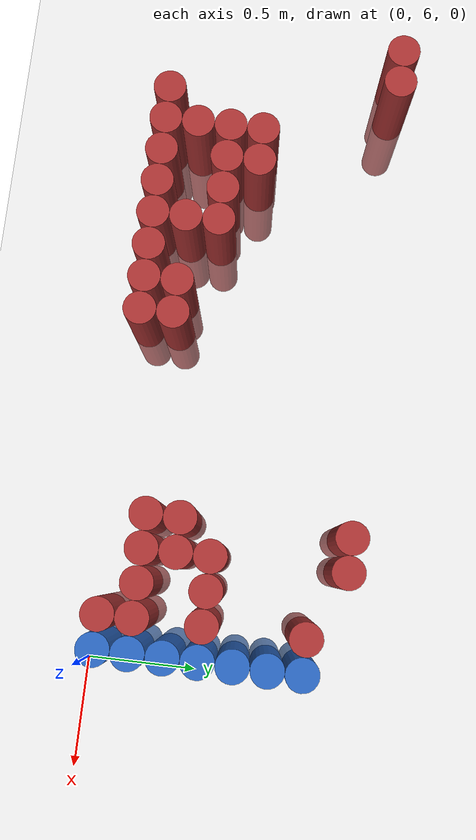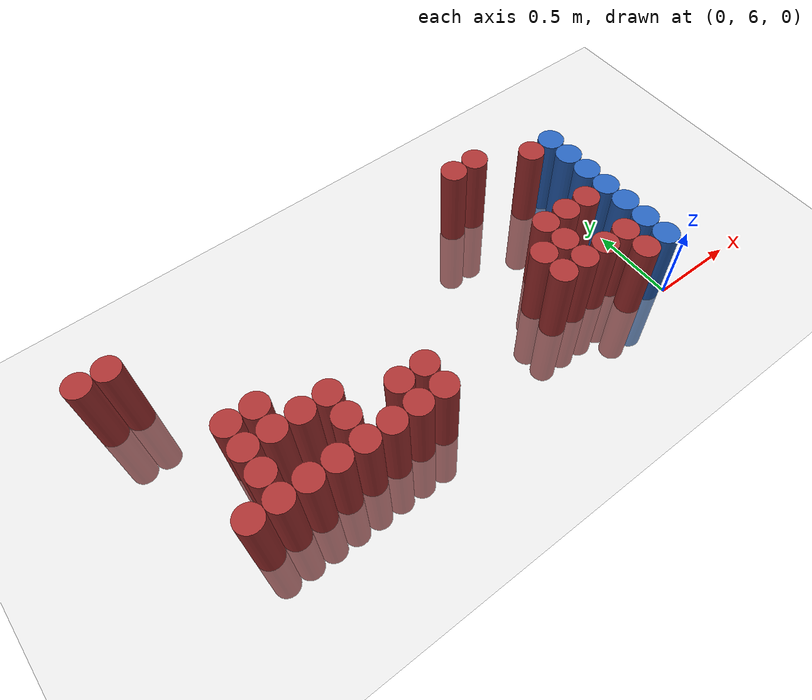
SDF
<sdf version="1.6">
 <world name="default">
  <model name="ground_plane">
   <static>1</static>
   <link name="link">
    <collision name="collision">
     <geometry><plane><normal>0 0 1</normal><size>100 100</size></plane></geometry>
     <surface><friction><ode><mu>100</mu><mu2>50</mu2></ode></friction></surface>
    </collision>
    <visual name="visual">
     <cast_shadows>0</cast_shadows>
     <geometry><plane><normal>0 0 1</normal><size>100 100</size></plane></geometry>
     <material>
      <script><uri>file://media/materials/scripts/gazebo.material</uri><name>Gazebo/Grey</name></script>
     </material>
    </visual>
   </link>
  </model>
  <model name="unit_cylinder_209">
   <static>1</static>
   <pose>-2.925000 7.125000 0.000000 0.000000 0.000000 0.000000</pose>
   <link name="link">
    <inertial>
     <mass>1</mass>
     <inertia><ixx>0.145833</ixx><ixy>0</ixy><ixz>0</ixz><iyy>0.145833</iyy><iyz>0</iyz><izz>0.125</izz></inertia>
    </inertial>
    <collision name="collision">
     <geometry><cylinder><radius>0.075000</radius><length>1</length></cylinder></geometry>
    </collision>
    <visual name="visual">
     <geometry><cylinder><radius>0.075000</radius><length>1</length></cylinder></geometry>
     <material>
      <ambient>0.648000 0.192000 0.192000 1</ambient>
      <diffuse>0.648000 0.192000 0.192000 1</diffuse>
     </material>
     <material>
      <script><name>Gazebo/Grey</name><uri>file://media/materials/scripts/gazebo.material</uri></script>
     </material>
    </visual>
    <sensor name="sensor_contact" type="contact"><contact><collision>collision</collision></contact></sensor>
   </link>
   <plugin filename="gz-sim-touchplugin-system" name="gz::sim::systems::TouchPlugin">
    <target>robot</target>
    <namespace>robot</namespace>
    <time>0.001</time>
    <enabled>true</enabled>
   </plugin>
  </model>
  <model name="unit_cylinder_216">
   <static>1</static>
   <pose>-2.775000 7.125000 0.000000 0.000000 0.000000 0.000000</pose>
   <link name="link">
    <inertial>
     <mass>1</mass>
     <inertia><ixx>0.145833</ixx><ixy>0</ixy><ixz>0</ixz><iyy>0.145833</iyy><iyz>0</iyz><izz>0.125</izz></inertia>
    </inertial>
    <collision name="collision">
     <geometry><cylinder><radius>0.075000</radius><length>1</length></cylinder></geometry>
    </collision>
    <visual name="visual">
     <geometry><cylinder><radius>0.075000</radius><length>1</length></cylinder></geometry>
     <material>
      <ambient>0.648000 0.192000 0.192000 1</ambient>
      <diffuse>0.648000 0.192000 0.192000 1</diffuse>
     </material>
     <material>
      <script><name>Gazebo/Grey</name><uri>file://media/materials/scripts/gazebo.material</uri></script>
     </material>
    </visual>
    <sensor name="sensor_contact" type="contact"><contact><collision>collision</collision></contact></sensor>
   </link>
   <plugin filename="gz-sim-touchplugin-system" name="gz::sim::systems::TouchPlugin">
    <target>robot</target>
    <namespace>robot</namespace>
    <time>0.001</time>
    <enabled>true</enabled>
   </plugin>
  </model>
  <model name="unit_cylinder_224">
   <static>1</static>
   <pose>-2.625000 6.075000 0.000000 0.000000 0.000000 0.000000</pose>
   <link name="link">
    <inertial>
     <mass>1</mass>
     <inertia><ixx>0.145833</ixx><ixy>0</ixy><ixz>0</ixz><iyy>0.145833</iyy><iyz>0</iyz><izz>0.125</izz></inertia>
    </inertial>
    <collision name="collision">
     <geometry><cylinder><radius>0.075000</radius><length>1</length></cylinder></geometry>
    </collision>
    <visual name="visual">
     <geometry><cylinder><radius>0.075000</radius><length>1</length></cylinder></geometry>
     <material>
      <ambient>0.648000 0.192000 0.192000 1</ambient>
      <diffuse>0.648000 0.192000 0.192000 1</diffuse>
     </material>
     <material>
      <script><name>Gazebo/Grey</name><uri>file://media/materials/scripts/gazebo.material</uri></script>
     </material>
    </visual>
    <sensor name="sensor_contact" type="contact"><contact><collision>collision</collision></contact></sensor>
   </link>
   <plugin filename="gz-sim-touchplugin-system" name="gz::sim::systems::TouchPlugin">
    <target>robot</target>
    <namespace>robot</namespace>
    <time>0.001</time>
    <enabled>true</enabled>
   </plugin>
  </model>
  <model name="unit_cylinder_235">
   <static>1</static>
   <pose>-2.475000 6.075000 0.000000 0.000000 0.000000 0.000000</pose>
   <link name="link">
    <inertial>
     <mass>1</mass>
     <inertia><ixx>0.145833</ixx><ixy>0</ixy><ixz>0</ixz><iyy>0.145833</iyy><iyz>0</iyz><izz>0.125</izz></inertia>
    </inertial>
    <collision name="collision">
     <geometry><cylinder><radius>0.075000</radius><length>1</length></cylinder></geometry>
    </collision>
    <visual name="visual">
     <geometry><cylinder><radius>0.075000</radius><length>1</length></cylinder></geometry>
     <material>
      <ambient>0.648000 0.192000 0.192000 1</ambient>
      <diffuse>0.648000 0.192000 0.192000 1</diffuse>
     </material>
     <material>
      <script><name>Gazebo/Grey</name><uri>file://media/materials/scripts/gazebo.material</uri></script>
     </material>
    </visual>
    <sensor name="sensor_contact" type="contact"><contact><collision>collision</collision></contact></sensor>
   </link>
   <plugin filename="gz-sim-touchplugin-system" name="gz::sim::systems::TouchPlugin">
    <target>robot</target>
    <namespace>robot</namespace>
    <time>0.001</time>
    <enabled>true</enabled>
   </plugin>
  </model>
  <model name="unit_cylinder_236">
   <static>1</static>
   <pose>-2.475000 6.225000 0.000000 0.000000 0.000000 0.000000</pose>
   <link name="link">
    <inertial>
     <mass>1</mass>
     <inertia><ixx>0.145833</ixx><ixy>0</ixy><ixz>0</ixz><iyy>0.145833</iyy><iyz>0</iyz><izz>0.125</izz></inertia>
    </inertial>
    <collision name="collision">
     <geometry><cylinder><radius>0.075000</radius><length>1</length></cylinder></geometry>
    </collision>
    <visual name="visual">
     <geometry><cylinder><radius>0.075000</radius><length>1</length></cylinder></geometry>
     <material>
      <ambient>0.648000 0.192000 0.192000 1</ambient>
      <diffuse>0.648000 0.192000 0.192000 1</diffuse>
     </material>
     <material>
      <script><name>Gazebo/Grey</name><uri>file://media/materials/scripts/gazebo.material</uri></script>
     </material>
    </visual>
    <sensor name="sensor_contact" type="contact"><contact><collision>collision</collision></contact></sensor>
   </link>
   <plugin filename="gz-sim-touchplugin-system" name="gz::sim::systems::TouchPlugin">
    <target>robot</target>
    <namespace>robot</namespace>
    <time>0.001</time>
    <enabled>true</enabled>
   </plugin>
  </model>
  <model name="unit_cylinder_237">
   <static>1</static>
   <pose>-2.475000 6.375000 0.000000 0.000000 0.000000 0.000000</pose>
   <link name="link">
    <inertial>
     <mass>1</mass>
     <inertia><ixx>0.145833</ixx><ixy>0</ixy><ixz>0</ixz><iyy>0.145833</iyy><iyz>0</iyz><izz>0.125</izz></inertia>
    </inertial>
    <collision name="collision">
     <geometry><cylinder><radius>0.075000</radius><length>1</length></cylinder></geometry>
    </collision>
    <visual name="visual">
     <geometry><cylinder><radius>0.075000</radius><length>1</length></cylinder></geometry>
     <material>
      <ambient>0.648000 0.192000 0.192000 1</ambient>
      <diffuse>0.648000 0.192000 0.192000 1</diffuse>
     </material>
     <material>
      <script><name>Gazebo/Grey</name><uri>file://media/materials/scripts/gazebo.material</uri></script>
     </material>
    </visual>
    <sensor name="sensor_contact" type="contact"><contact><collision>collision</collision></contact></sensor>
   </link>
   <plugin filename="gz-sim-touchplugin-system" name="gz::sim::systems::TouchPlugin">
    <target>robot</target>
    <namespace>robot</namespace>
    <time>0.001</time>
    <enabled>true</enabled>
   </plugin>
  </model>
  <model name="unit_cylinder_238">
   <static>1</static>
   <pose>-2.475000 6.525000 0.000000 0.000000 0.000000 0.000000</pose>
   <link name="link">
    <inertial>
     <mass>1</mass>
     <inertia><ixx>0.145833</ixx><ixy>0</ixy><ixz>0</ixz><iyy>0.145833</iyy><iyz>0</iyz><izz>0.125</izz></inertia>
    </inertial>
    <collision name="collision">
     <geometry><cylinder><radius>0.075000</radius><length>1</length></cylinder></geometry>
    </collision>
    <visual name="visual">
     <geometry><cylinder><radius>0.075000</radius><length>1</length></cylinder></geometry>
     <material>
      <ambient>0.648000 0.192000 0.192000 1</ambient>
      <diffuse>0.648000 0.192000 0.192000 1</diffuse>
     </material>
     <material>
      <script><name>Gazebo/Grey</name><uri>file://media/materials/scripts/gazebo.material</uri></script>
     </material>
    </visual>
    <sensor name="sensor_contact" type="contact"><contact><collision>collision</collision></contact></sensor>
   </link>
   <plugin filename="gz-sim-touchplugin-system" name="gz::sim::systems::TouchPlugin">
    <target>robot</target>
    <namespace>robot</namespace>
    <time>0.001</time>
    <enabled>true</enabled>
   </plugin>
  </model>
  <model name="unit_cylinder_246">
   <static>1</static>
   <pose>-2.325000 6.075000 0.000000 0.000000 0.000000 0.000000</pose>
   <link name="link">
    <inertial>
     <mass>1</mass>
     <inertia><ixx>0.145833</ixx><ixy>0</ixy><ixz>0</ixz><iyy>0.145833</iyy><iyz>0</iyz><izz>0.125</izz></inertia>
    </inertial>
    <collision name="collision">
     <geometry><cylinder><radius>0.075000</radius><length>1</length></cylinder></geometry>
    </collision>
    <visual name="visual">
     <geometry><cylinder><radius>0.075000</radius><length>1</length></cylinder></geometry>
     <material>
      <ambient>0.648000 0.192000 0.192000 1</ambient>
      <diffuse>0.648000 0.192000 0.192000 1</diffuse>
     </material>
     <material>
      <script><name>Gazebo/Grey</name><uri>file://media/materials/scripts/gazebo.material</uri></script>
     </material>
    </visual>
    <sensor name="sensor_contact" type="contact"><contact><collision>collision</collision></contact></sensor>
   </link>
   <plugin filename="gz-sim-touchplugin-system" name="gz::sim::systems::TouchPlugin">
    <target>robot</target>
    <namespace>robot</namespace>
    <time>0.001</time>
    <enabled>true</enabled>
   </plugin>
  </model>
  <model name="unit_cylinder_247">
   <static>1</static>
   <pose>-2.325000 6.375000 0.000000 0.000000 0.000000 0.000000</pose>
   <link name="link">
    <inertial>
     <mass>1</mass>
     <inertia><ixx>0.145833</ixx><ixy>0</ixy><ixz>0</ixz><iyy>0.145833</iyy><iyz>0</iyz><izz>0.125</izz></inertia>
    </inertial>
    <collision name="collision">
     <geometry><cylinder><radius>0.075000</radius><length>1</length></cylinder></geometry>
    </collision>
    <visual name="visual">
     <geometry><cylinder><radius>0.075000</radius><length>1</length></cylinder></geometry>
     <material>
      <ambient>0.648000 0.192000 0.192000 1</ambient>
      <diffuse>0.648000 0.192000 0.192000 1</diffuse>
     </material>
     <material>
      <script><name>Gazebo/Grey</name><uri>file://media/materials/scripts/gazebo.material</uri></script>
     </material>
    </visual>
    <sensor name="sensor_contact" type="contact"><contact><collision>collision</collision></contact></sensor>
   </link>
   <plugin filename="gz-sim-touchplugin-system" name="gz::sim::systems::TouchPlugin">
    <target>robot</target>
    <namespace>robot</namespace>
    <time>0.001</time>
    <enabled>true</enabled>
   </plugin>
  </model>
  <model name="unit_cylinder_248">
   <static>1</static>
   <pose>-2.325000 6.525000 0.000000 0.000000 0.000000 0.000000</pose>
   <link name="link">
    <inertial>
     <mass>1</mass>
     <inertia><ixx>0.145833</ixx><ixy>0</ixy><ixz>0</ixz><iyy>0.145833</iyy><iyz>0</iyz><izz>0.125</izz></inertia>
    </inertial>
    <collision name="collision">
     <geometry><cylinder><radius>0.075000</radius><length>1</length></cylinder></geometry>
    </collision>
    <visual name="visual">
     <geometry><cylinder><radius>0.075000</radius><length>1</length></cylinder></geometry>
     <material>
      <ambient>0.648000 0.192000 0.192000 1</ambient>
      <diffuse>0.648000 0.192000 0.192000 1</diffuse>
     </material>
     <material>
      <script><name>Gazebo/Grey</name><uri>file://media/materials/scripts/gazebo.material</uri></script>
     </material>
    </visual>
    <sensor name="sensor_contact" type="contact"><contact><collision>collision</collision></contact></sensor>
   </link>
   <plugin filename="gz-sim-touchplugin-system" name="gz::sim::systems::TouchPlugin">
    <target>robot</target>
    <namespace>robot</namespace>
    <time>0.001</time>
    <enabled>true</enabled>
   </plugin>
  </model>
  <model name="unit_cylinder_254">
   <static>1</static>
   <pose>-2.175000 6.075000 0.000000 0.000000 0.000000 0.000000</pose>
   <link name="link">
    <inertial>
     <mass>1</mass>
     <inertia><ixx>0.145833</ixx><ixy>0</ixy><ixz>0</ixz><iyy>0.145833</iyy><iyz>0</iyz><izz>0.125</izz></inertia>
    </inertial>
    <collision name="collision">
     <geometry><cylinder><radius>0.075000</radius><length>1</length></cylinder></geometry>
    </collision>
    <visual name="visual">
     <geometry><cylinder><radius>0.075000</radius><length>1</length></cylinder></geometry>
     <material>
      <ambient>0.648000 0.192000 0.192000 1</ambient>
      <diffuse>0.648000 0.192000 0.192000 1</diffuse>
     </material>
     <material>
      <script><name>Gazebo/Grey</name><uri>file://media/materials/scripts/gazebo.material</uri></script>
     </material>
    </visual>
    <sensor name="sensor_contact" type="contact"><contact><collision>collision</collision></contact></sensor>
   </link>
   <plugin filename="gz-sim-touchplugin-system" name="gz::sim::systems::TouchPlugin">
    <target>robot</target>
    <namespace>robot</namespace>
    <time>0.001</time>
    <enabled>true</enabled>
   </plugin>
  </model>
  <model name="unit_cylinder_255">
   <static>1</static>
   <pose>-2.175000 6.375000 0.000000 0.000000 0.000000 0.000000</pose>
   <link name="link">
    <inertial>
     <mass>1</mass>
     <inertia><ixx>0.145833</ixx><ixy>0</ixy><ixz>0</ixz><iyy>0.145833</iyy><iyz>0</iyz><izz>0.125</izz></inertia>
    </inertial>
    <collision name="collision">
     <geometry><cylinder><radius>0.075000</radius><length>1</length></cylinder></geometry>
    </collision>
    <visual name="visual">
     <geometry><cylinder><radius>0.075000</radius><length>1</length></cylinder></geometry>
     <material>
      <ambient>0.648000 0.192000 0.192000 1</ambient>
      <diffuse>0.648000 0.192000 0.192000 1</diffuse>
     </material>
     <material>
      <script><name>Gazebo/Grey</name><uri>file://media/materials/scripts/gazebo.material</uri></script>
     </material>
    </visual>
    <sensor name="sensor_contact" type="contact"><contact><collision>collision</collision></contact></sensor>
   </link>
   <plugin filename="gz-sim-touchplugin-system" name="gz::sim::systems::TouchPlugin">
    <target>robot</target>
    <namespace>robot</namespace>
    <time>0.001</time>
    <enabled>true</enabled>
   </plugin>
  </model>
  <model name="unit_cylinder_257">
   <static>1</static>
   <pose>-2.025000 6.075000 0.000000 0.000000 0.000000 0.000000</pose>
   <link name="link">
    <inertial>
     <mass>1</mass>
     <inertia><ixx>0.145833</ixx><ixy>0</ixy><ixz>0</ixz><iyy>0.145833</iyy><iyz>0</iyz><izz>0.125</izz></inertia>
    </inertial>
    <collision name="collision">
     <geometry><cylinder><radius>0.075000</radius><length>1</length></cylinder></geometry>
    </collision>
    <visual name="visual">
     <geometry><cylinder><radius>0.075000</radius><length>1</length></cylinder></geometry>
     <material>
      <ambient>0.648000 0.192000 0.192000 1</ambient>
      <diffuse>0.648000 0.192000 0.192000 1</diffuse>
     </material>
     <material>
      <script><name>Gazebo/Grey</name><uri>file://media/materials/scripts/gazebo.material</uri></script>
     </material>
    </visual>
    <sensor name="sensor_contact" type="contact"><contact><collision>collision</collision></contact></sensor>
   </link>
   <plugin filename="gz-sim-touchplugin-system" name="gz::sim::systems::TouchPlugin">
    <target>robot</target>
    <namespace>robot</namespace>
    <time>0.001</time>
    <enabled>true</enabled>
   </plugin>
  </model>
  <model name="unit_cylinder_258">
   <static>1</static>
   <pose>-2.025000 6.225000 0.000000 0.000000 0.000000 0.000000</pose>
   <link name="link">
    <inertial>
     <mass>1</mass>
     <inertia><ixx>0.145833</ixx><ixy>0</ixy><ixz>0</ixz><iyy>0.145833</iyy><iyz>0</iyz><izz>0.125</izz></inertia>
    </inertial>
    <collision name="collision">
     <geometry><cylinder><radius>0.075000</radius><length>1</length></cylinder></geometry>
    </collision>
    <visual name="visual">
     <geometry><cylinder><radius>0.075000</radius><length>1</length></cylinder></geometry>
     <material>
      <ambient>0.648000 0.192000 0.192000 1</ambient>
      <diffuse>0.648000 0.192000 0.192000 1</diffuse>
     </material>
     <material>
      <script><name>Gazebo/Grey</name><uri>file://media/materials/scripts/gazebo.material</uri></script>
     </material>
    </visual>
    <sensor name="sensor_contact" type="contact"><contact><collision>collision</collision></contact></sensor>
   </link>
   <plugin filename="gz-sim-touchplugin-system" name="gz::sim::systems::TouchPlugin">
    <target>robot</target>
    <namespace>robot</namespace>
    <time>0.001</time>
    <enabled>true</enabled>
   </plugin>
  </model>
  <model name="unit_cylinder_259">
   <static>1</static>
   <pose>-2.025000 6.375000 0.000000 0.000000 0.000000 0.000000</pose>
   <link name="link">
    <inertial>
     <mass>1</mass>
     <inertia><ixx>0.145833</ixx><ixy>0</ixy><ixz>0</ixz><iyy>0.145833</iyy><iyz>0</iyz><izz>0.125</izz></inertia>
    </inertial>
    <collision name="collision">
     <geometry><cylinder><radius>0.075000</radius><length>1</length></cylinder></geometry>
    </collision>
    <visual name="visual">
     <geometry><cylinder><radius>0.075000</radius><length>1</length></cylinder></geometry>
     <material>
      <ambient>0.648000 0.192000 0.192000 1</ambient>
      <diffuse>0.648000 0.192000 0.192000 1</diffuse>
     </material>
     <material>
      <script><name>Gazebo/Grey</name><uri>file://media/materials/scripts/gazebo.material</uri></script>
     </material>
    </visual>
    <sensor name="sensor_contact" type="contact"><contact><collision>collision</collision></contact></sensor>
   </link>
   <plugin filename="gz-sim-touchplugin-system" name="gz::sim::systems::TouchPlugin">
    <target>robot</target>
    <namespace>robot</namespace>
    <time>0.001</time>
    <enabled>true</enabled>
   </plugin>
  </model>
  <model name="unit_cylinder_263">
   <static>1</static>
   <pose>-1.875000 6.075000 0.000000 0.000000 0.000000 0.000000</pose>
   <link name="link">
    <inertial>
     <mass>1</mass>
     <inertia><ixx>0.145833</ixx><ixy>0</ixy><ixz>0</ixz><iyy>0.145833</iyy><iyz>0</iyz><izz>0.125</izz></inertia>
    </inertial>
    <collision name="collision">
     <geometry><cylinder><radius>0.075000</radius><length>1</length></cylinder></geometry>
    </collision>
    <visual name="visual">
     <geometry><cylinder><radius>0.075000</radius><length>1</length></cylinder></geometry>
     <material>
      <ambient>0.648000 0.192000 0.192000 1</ambient>
      <diffuse>0.648000 0.192000 0.192000 1</diffuse>
     </material>
     <material>
      <script><name>Gazebo/Grey</name><uri>file://media/materials/scripts/gazebo.material</uri></script>
     </material>
    </visual>
    <sensor name="sensor_contact" type="contact"><contact><collision>collision</collision></contact></sensor>
   </link>
   <plugin filename="gz-sim-touchplugin-system" name="gz::sim::systems::TouchPlugin">
    <target>robot</target>
    <namespace>robot</namespace>
    <time>0.001</time>
    <enabled>true</enabled>
   </plugin>
  </model>
  <model name="unit_cylinder_267">
   <static>1</static>
   <pose>-1.725000 6.075000 0.000000 0.000000 0.000000 0.000000</pose>
   <link name="link">
    <inertial>
     <mass>1</mass>
     <inertia><ixx>0.145833</ixx><ixy>0</ixy><ixz>0</ixz><iyy>0.145833</iyy><iyz>0</iyz><izz>0.125</izz></inertia>
    </inertial>
    <collision name="collision">
     <geometry><cylinder><radius>0.075000</radius><length>1</length></cylinder></geometry>
    </collision>
    <visual name="visual">
     <geometry><cylinder><radius>0.075000</radius><length>1</length></cylinder></geometry>
     <material>
      <ambient>0.648000 0.192000 0.192000 1</ambient>
      <diffuse>0.648000 0.192000 0.192000 1</diffuse>
     </material>
     <material>
      <script><name>Gazebo/Grey</name><uri>file://media/materials/scripts/gazebo.material</uri></script>
     </material>
    </visual>
    <sensor name="sensor_contact" type="contact"><contact><collision>collision</collision></contact></sensor>
   </link>
   <plugin filename="gz-sim-touchplugin-system" name="gz::sim::systems::TouchPlugin">
    <target>robot</target>
    <namespace>robot</namespace>
    <time>0.001</time>
    <enabled>true</enabled>
   </plugin>
  </model>
  <model name="unit_cylinder_268">
   <static>1</static>
   <pose>-1.725000 6.225000 0.000000 0.000000 0.000000 0.000000</pose>
   <link name="link">
    <inertial>
     <mass>1</mass>
     <inertia><ixx>0.145833</ixx><ixy>0</ixy><ixz>0</ixz><iyy>0.145833</iyy><iyz>0</iyz><izz>0.125</izz></inertia>
    </inertial>
    <collision name="collision">
     <geometry><cylinder><radius>0.075000</radius><length>1</length></cylinder></geometry>
    </collision>
    <visual name="visual">
     <geometry><cylinder><radius>0.075000</radius><length>1</length></cylinder></geometry>
     <material>
      <ambient>0.648000 0.192000 0.192000 1</ambient>
      <diffuse>0.648000 0.192000 0.192000 1</diffuse>
     </material>
     <material>
      <script><name>Gazebo/Grey</name><uri>file://media/materials/scripts/gazebo.material</uri></script>
     </material>
    </visual>
    <sensor name="sensor_contact" type="contact"><contact><collision>collision</collision></contact></sensor>
   </link>
   <plugin filename="gz-sim-touchplugin-system" name="gz::sim::systems::TouchPlugin">
    <target>robot</target>
    <namespace>robot</namespace>
    <time>0.001</time>
    <enabled>true</enabled>
   </plugin>
  </model>
  <model name="unit_cylinder_272">
   <static>1</static>
   <pose>-1.575000 6.075000 0.000000 0.000000 0.000000 0.000000</pose>
   <link name="link">
    <inertial>
     <mass>1</mass>
     <inertia><ixx>0.145833</ixx><ixy>0</ixy><ixz>0</ixz><iyy>0.145833</iyy><iyz>0</iyz><izz>0.125</izz></inertia>
    </inertial>
    <collision name="collision">
     <geometry><cylinder><radius>0.075000</radius><length>1</length></cylinder></geometry>
    </collision>
    <visual name="visual">
     <geometry><cylinder><radius>0.075000</radius><length>1</length></cylinder></geometry>
     <material>
      <ambient>0.648000 0.192000 0.192000 1</ambient>
      <diffuse>0.648000 0.192000 0.192000 1</diffuse>
     </material>
     <material>
      <script><name>Gazebo/Grey</name><uri>file://media/materials/scripts/gazebo.material</uri></script>
     </material>
    </visual>
    <sensor name="sensor_contact" type="contact"><contact><collision>collision</collision></contact></sensor>
   </link>
   <plugin filename="gz-sim-touchplugin-system" name="gz::sim::systems::TouchPlugin">
    <target>robot</target>
    <namespace>robot</namespace>
    <time>0.001</time>
    <enabled>true</enabled>
   </plugin>
  </model>
  <model name="unit_cylinder_273">
   <static>1</static>
   <pose>-1.575000 6.225000 0.000000 0.000000 0.000000 0.000000</pose>
   <link name="link">
    <inertial>
     <mass>1</mass>
     <inertia><ixx>0.145833</ixx><ixy>0</ixy><ixz>0</ixz><iyy>0.145833</iyy><iyz>0</iyz><izz>0.125</izz></inertia>
    </inertial>
    <collision name="collision">
     <geometry><cylinder><radius>0.075000</radius><length>1</length></cylinder></geometry>
    </collision>
    <visual name="visual">
     <geometry><cylinder><radius>0.075000</radius><length>1</length></cylinder></geometry>
     <material>
      <ambient>0.648000 0.192000 0.192000 1</ambient>
      <diffuse>0.648000 0.192000 0.192000 1</diffuse>
     </material>
     <material>
      <script><name>Gazebo/Grey</name><uri>file://media/materials/scripts/gazebo.material</uri></script>
     </material>
    </visual>
    <sensor name="sensor_contact" type="contact"><contact><collision>collision</collision></contact></sensor>
   </link>
   <plugin filename="gz-sim-touchplugin-system" name="gz::sim::systems::TouchPlugin">
    <target>robot</target>
    <namespace>robot</namespace>
    <time>0.001</time>
    <enabled>true</enabled>
   </plugin>
  </model>
  <model name="unit_cylinder_289">
   <static>1</static>
   <pose>-0.675000 6.225000 0.000000 0.000000 0.000000 0.000000</pose>
   <link name="link">
    <inertial>
     <mass>1</mass>
     <inertia><ixx>0.145833</ixx><ixy>0</ixy><ixz>0</ixz><iyy>0.145833</iyy><iyz>0</iyz><izz>0.125</izz></inertia>
    </inertial>
    <collision name="collision">
     <geometry><cylinder><radius>0.075000</radius><length>1</length></cylinder></geometry>
    </collision>
    <visual name="visual">
     <geometry><cylinder><radius>0.075000</radius><length>1</length></cylinder></geometry>
     <material>
      <ambient>0.648000 0.192000 0.192000 1</ambient>
      <diffuse>0.648000 0.192000 0.192000 1</diffuse>
     </material>
     <material>
      <script><name>Gazebo/Grey</name><uri>file://media/materials/scripts/gazebo.material</uri></script>
     </material>
    </visual>
    <sensor name="sensor_contact" type="contact"><contact><collision>collision</collision></contact></sensor>
   </link>
   <plugin filename="gz-sim-touchplugin-system" name="gz::sim::systems::TouchPlugin">
    <target>robot</target>
    <namespace>robot</namespace>
    <time>0.001</time>
    <enabled>true</enabled>
   </plugin>
  </model>
  <model name="unit_cylinder_290">
   <static>1</static>
   <pose>-0.675000 6.375000 0.000000 0.000000 0.000000 0.000000</pose>
   <link name="link">
    <inertial>
     <mass>1</mass>
     <inertia><ixx>0.145833</ixx><ixy>0</ixy><ixz>0</ixz><iyy>0.145833</iyy><iyz>0</iyz><izz>0.125</izz></inertia>
    </inertial>
    <collision name="collision">
     <geometry><cylinder><radius>0.075000</radius><length>1</length></cylinder></geometry>
    </collision>
    <visual name="visual">
     <geometry><cylinder><radius>0.075000</radius><length>1</length></cylinder></geometry>
     <material>
      <ambient>0.648000 0.192000 0.192000 1</ambient>
      <diffuse>0.648000 0.192000 0.192000 1</diffuse>
     </material>
     <material>
      <script><name>Gazebo/Grey</name><uri>file://media/materials/scripts/gazebo.material</uri></script>
     </material>
    </visual>
    <sensor name="sensor_contact" type="contact"><contact><collision>collision</collision></contact></sensor>
   </link>
   <plugin filename="gz-sim-touchplugin-system" name="gz::sim::systems::TouchPlugin">
    <target>robot</target>
    <namespace>robot</namespace>
    <time>0.001</time>
    <enabled>true</enabled>
   </plugin>
  </model>
  <model name="unit_cylinder_291">
   <static>1</static>
   <pose>-0.675000 7.125000 0.000000 0.000000 0.000000 0.000000</pose>
   <link name="link">
    <inertial>
     <mass>1</mass>
     <inertia><ixx>0.145833</ixx><ixy>0</ixy><ixz>0</ixz><iyy>0.145833</iyy><iyz>0</iyz><izz>0.125</izz></inertia>
    </inertial>
    <collision name="collision">
     <geometry><cylinder><radius>0.075000</radius><length>1</length></cylinder></geometry>
    </collision>
    <visual name="visual">
     <geometry><cylinder><radius>0.075000</radius><length>1</length></cylinder></geometry>
     <material>
      <ambient>0.648000 0.192000 0.192000 1</ambient>
      <diffuse>0.648000 0.192000 0.192000 1</diffuse>
     </material>
     <material>
      <script><name>Gazebo/Grey</name><uri>file://media/materials/scripts/gazebo.material</uri></script>
     </material>
    </visual>
    <sensor name="sensor_contact" type="contact"><contact><collision>collision</collision></contact></sensor>
   </link>
   <plugin filename="gz-sim-touchplugin-system" name="gz::sim::systems::TouchPlugin">
    <target>robot</target>
    <namespace>robot</namespace>
    <time>0.001</time>
    <enabled>true</enabled>
   </plugin>
  </model>
  <model name="unit_cylinder_293">
   <static>1</static>
   <pose>-0.525000 6.225000 0.000000 0.000000 0.000000 0.000000</pose>
   <link name="link">
    <inertial>
     <mass>1</mass>
     <inertia><ixx>0.145833</ixx><ixy>0</ixy><ixz>0</ixz><iyy>0.145833</iyy><iyz>0</iyz><izz>0.125</izz></inertia>
    </inertial>
    <collision name="collision">
     <geometry><cylinder><radius>0.075000</radius><length>1</length></cylinder></geometry>
    </collision>
    <visual name="visual">
     <geometry><cylinder><radius>0.075000</radius><length>1</length></cylinder></geometry>
     <material>
      <ambient>0.648000 0.192000 0.192000 1</ambient>
      <diffuse>0.648000 0.192000 0.192000 1</diffuse>
     </material>
     <material>
      <script><name>Gazebo/Grey</name><uri>file://media/materials/scripts/gazebo.material</uri></script>
     </material>
    </visual>
    <sensor name="sensor_contact" type="contact"><contact><collision>collision</collision></contact></sensor>
   </link>
   <plugin filename="gz-sim-touchplugin-system" name="gz::sim::systems::TouchPlugin">
    <target>robot</target>
    <namespace>robot</namespace>
    <time>0.001</time>
    <enabled>true</enabled>
   </plugin>
  </model>
  <model name="unit_cylinder_294">
   <static>1</static>
   <pose>-0.525000 6.375000 0.000000 0.000000 0.000000 0.000000</pose>
   <link name="link">
    <inertial>
     <mass>1</mass>
     <inertia><ixx>0.145833</ixx><ixy>0</ixy><ixz>0</ixz><iyy>0.145833</iyy><iyz>0</iyz><izz>0.125</izz></inertia>
    </inertial>
    <collision name="collision">
     <geometry><cylinder><radius>0.075000</radius><length>1</length></cylinder></geometry>
    </collision>
    <visual name="visual">
     <geometry><cylinder><radius>0.075000</radius><length>1</length></cylinder></geometry>
     <material>
      <ambient>0.648000 0.192000 0.192000 1</ambient>
      <diffuse>0.648000 0.192000 0.192000 1</diffuse>
     </material>
     <material>
      <script><name>Gazebo/Grey</name><uri>file://media/materials/scripts/gazebo.material</uri></script>
     </material>
    </visual>
    <sensor name="sensor_contact" type="contact"><contact><collision>collision</collision></contact></sensor>
   </link>
   <plugin filename="gz-sim-touchplugin-system" name="gz::sim::systems::TouchPlugin">
    <target>robot</target>
    <namespace>robot</namespace>
    <time>0.001</time>
    <enabled>true</enabled>
   </plugin>
  </model>
  <model name="unit_cylinder_295">
   <static>1</static>
   <pose>-0.525000 6.525000 0.000000 0.000000 0.000000 0.000000</pose>
   <link name="link">
    <inertial>
     <mass>1</mass>
     <inertia><ixx>0.145833</ixx><ixy>0</ixy><ixz>0</ixz><iyy>0.145833</iyy><iyz>0</iyz><izz>0.125</izz></inertia>
    </inertial>
    <collision name="collision">
     <geometry><cylinder><radius>0.075000</radius><length>1</length></cylinder></geometry>
    </collision>
    <visual name="visual">
     <geometry><cylinder><radius>0.075000</radius><length>1</length></cylinder></geometry>
     <material>
      <ambient>0.648000 0.192000 0.192000 1</ambient>
      <diffuse>0.648000 0.192000 0.192000 1</diffuse>
     </material>
     <material>
      <script><name>Gazebo/Grey</name><uri>file://media/materials/scripts/gazebo.material</uri></script>
     </material>
    </visual>
    <sensor name="sensor_contact" type="contact"><contact><collision>collision</collision></contact></sensor>
   </link>
   <plugin filename="gz-sim-touchplugin-system" name="gz::sim::systems::TouchPlugin">
    <target>robot</target>
    <namespace>robot</namespace>
    <time>0.001</time>
    <enabled>true</enabled>
   </plugin>
  </model>
  <model name="unit_cylinder_296">
   <static>1</static>
   <pose>-0.525000 7.125000 0.000000 0.000000 0.000000 0.000000</pose>
   <link name="link">
    <inertial>
     <mass>1</mass>
     <inertia><ixx>0.145833</ixx><ixy>0</ixy><ixz>0</ixz><iyy>0.145833</iyy><iyz>0</iyz><izz>0.125</izz></inertia>
    </inertial>
    <collision name="collision">
     <geometry><cylinder><radius>0.075000</radius><length>1</length></cylinder></geometry>
    </collision>
    <visual name="visual">
     <geometry><cylinder><radius>0.075000</radius><length>1</length></cylinder></geometry>
     <material>
      <ambient>0.648000 0.192000 0.192000 1</ambient>
      <diffuse>0.648000 0.192000 0.192000 1</diffuse>
     </material>
     <material>
      <script><name>Gazebo/Grey</name><uri>file://media/materials/scripts/gazebo.material</uri></script>
     </material>
    </visual>
    <sensor name="sensor_contact" type="contact"><contact><collision>collision</collision></contact></sensor>
   </link>
   <plugin filename="gz-sim-touchplugin-system" name="gz::sim::systems::TouchPlugin">
    <target>robot</target>
    <namespace>robot</namespace>
    <time>0.001</time>
    <enabled>true</enabled>
   </plugin>
  </model>
  <model name="unit_cylinder_301">
   <static>1</static>
   <pose>-0.375000 6.225000 0.000000 0.000000 0.000000 0.000000</pose>
   <link name="link">
    <inertial>
     <mass>1</mass>
     <inertia><ixx>0.145833</ixx><ixy>0</ixy><ixz>0</ixz><iyy>0.145833</iyy><iyz>0</iyz><izz>0.125</izz></inertia>
    </inertial>
    <collision name="collision">
     <geometry><cylinder><radius>0.075000</radius><length>1</length></cylinder></geometry>
    </collision>
    <visual name="visual">
     <geometry><cylinder><radius>0.075000</radius><length>1</length></cylinder></geometry>
     <material>
      <ambient>0.648000 0.192000 0.192000 1</ambient>
      <diffuse>0.648000 0.192000 0.192000 1</diffuse>
     </material>
     <material>
      <script><name>Gazebo/Grey</name><uri>file://media/materials/scripts/gazebo.material</uri></script>
     </material>
    </visual>
    <sensor name="sensor_contact" type="contact"><contact><collision>collision</collision></contact></sensor>
   </link>
   <plugin filename="gz-sim-touchplugin-system" name="gz::sim::systems::TouchPlugin">
    <target>robot</target>
    <namespace>robot</namespace>
    <time>0.001</time>
    <enabled>true</enabled>
   </plugin>
  </model>
  <model name="unit_cylinder_302">
   <static>1</static>
   <pose>-0.375000 6.525000 0.000000 0.000000 0.000000 0.000000</pose>
   <link name="link">
    <inertial>
     <mass>1</mass>
     <inertia><ixx>0.145833</ixx><ixy>0</ixy><ixz>0</ixz><iyy>0.145833</iyy><iyz>0</iyz><izz>0.125</izz></inertia>
    </inertial>
    <collision name="collision">
     <geometry><cylinder><radius>0.075000</radius><length>1</length></cylinder></geometry>
    </collision>
    <visual name="visual">
     <geometry><cylinder><radius>0.075000</radius><length>1</length></cylinder></geometry>
     <material>
      <ambient>0.648000 0.192000 0.192000 1</ambient>
      <diffuse>0.648000 0.192000 0.192000 1</diffuse>
     </material>
     <material>
      <script><name>Gazebo/Grey</name><uri>file://media/materials/scripts/gazebo.material</uri></script>
     </material>
    </visual>
    <sensor name="sensor_contact" type="contact"><contact><collision>collision</collision></contact></sensor>
   </link>
   <plugin filename="gz-sim-touchplugin-system" name="gz::sim::systems::TouchPlugin">
    <target>robot</target>
    <namespace>robot</namespace>
    <time>0.001</time>
    <enabled>true</enabled>
   </plugin>
  </model>
  <model name="unit_cylinder_312">
   <static>1</static>
   <pose>-0.225000 6.075000 0.000000 0.000000 0.000000 0.000000</pose>
   <link name="link">
    <inertial>
     <mass>1</mass>
     <inertia><ixx>0.145833</ixx><ixy>0</ixy><ixz>0</ixz><iyy>0.145833</iyy><iyz>0</iyz><izz>0.125</izz></inertia>
    </inertial>
    <collision name="collision">
     <geometry><cylinder><radius>0.075000</radius><length>1</length></cylinder></geometry>
    </collision>
    <visual name="visual">
     <geometry><cylinder><radius>0.075000</radius><length>1</length></cylinder></geometry>
     <material>
      <ambient>0.648000 0.192000 0.192000 1</ambient>
      <diffuse>0.648000 0.192000 0.192000 1</diffuse>
     </material>
     <material>
      <script><name>Gazebo/Grey</name><uri>file://media/materials/scripts/gazebo.material</uri></script>
     </material>
    </visual>
    <sensor name="sensor_contact" type="contact"><contact><collision>collision</collision></contact></sensor>
   </link>
   <plugin filename="gz-sim-touchplugin-system" name="gz::sim::systems::TouchPlugin">
    <target>robot</target>
    <namespace>robot</namespace>
    <time>0.001</time>
    <enabled>true</enabled>
   </plugin>
  </model>
  <model name="unit_cylinder_313">
   <static>1</static>
   <pose>-0.225000 6.225000 0.000000 0.000000 0.000000 0.000000</pose>
   <link name="link">
    <inertial>
     <mass>1</mass>
     <inertia><ixx>0.145833</ixx><ixy>0</ixy><ixz>0</ixz><iyy>0.145833</iyy><iyz>0</iyz><izz>0.125</izz></inertia>
    </inertial>
    <collision name="collision">
     <geometry><cylinder><radius>0.075000</radius><length>1</length></cylinder></geometry>
    </collision>
    <visual name="visual">
     <geometry><cylinder><radius>0.075000</radius><length>1</length></cylinder></geometry>
     <material>
      <ambient>0.648000 0.192000 0.192000 1</ambient>
      <diffuse>0.648000 0.192000 0.192000 1</diffuse>
     </material>
     <material>
      <script><name>Gazebo/Grey</name><uri>file://media/materials/scripts/gazebo.material</uri></script>
     </material>
    </visual>
    <sensor name="sensor_contact" type="contact"><contact><collision>collision</collision></contact></sensor>
   </link>
   <plugin filename="gz-sim-touchplugin-system" name="gz::sim::systems::TouchPlugin">
    <target>robot</target>
    <namespace>robot</namespace>
    <time>0.001</time>
    <enabled>true</enabled>
   </plugin>
  </model>
  <model name="unit_cylinder_314">
   <static>1</static>
   <pose>-0.225000 6.525000 0.000000 0.000000 0.000000 0.000000</pose>
   <link name="link">
    <inertial>
     <mass>1</mass>
     <inertia><ixx>0.145833</ixx><ixy>0</ixy><ixz>0</ixz><iyy>0.145833</iyy><iyz>0</iyz><izz>0.125</izz></inertia>
    </inertial>
    <collision name="collision">
     <geometry><cylinder><radius>0.075000</radius><length>1</length></cylinder></geometry>
    </collision>
    <visual name="visual">
     <geometry><cylinder><radius>0.075000</radius><length>1</length></cylinder></geometry>
     <material>
      <ambient>0.648000 0.192000 0.192000 1</ambient>
      <diffuse>0.648000 0.192000 0.192000 1</diffuse>
     </material>
     <material>
      <script><name>Gazebo/Grey</name><uri>file://media/materials/scripts/gazebo.material</uri></script>
     </material>
    </visual>
    <sensor name="sensor_contact" type="contact"><contact><collision>collision</collision></contact></sensor>
   </link>
   <plugin filename="gz-sim-touchplugin-system" name="gz::sim::systems::TouchPlugin">
    <target>robot</target>
    <namespace>robot</namespace>
    <time>0.001</time>
    <enabled>true</enabled>
   </plugin>
  </model>
  <model name="unit_cylinder_315">
   <static>1</static>
   <pose>-0.225000 6.975000 0.000000 0.000000 0.000000 0.000000</pose>
   <link name="link">
    <inertial>
     <mass>1</mass>
     <inertia><ixx>0.145833</ixx><ixy>0</ixy><ixz>0</ixz><iyy>0.145833</iyy><iyz>0</iyz><izz>0.125</izz></inertia>
    </inertial>
    <collision name="collision">
     <geometry><cylinder><radius>0.075000</radius><length>1</length></cylinder></geometry>
    </collision>
    <visual name="visual">
     <geometry><cylinder><radius>0.075000</radius><length>1</length></cylinder></geometry>
     <material>
      <ambient>0.648000 0.192000 0.192000 1</ambient>
      <diffuse>0.648000 0.192000 0.192000 1</diffuse>
     </material>
     <material>
      <script><name>Gazebo/Grey</name><uri>file://media/materials/scripts/gazebo.material</uri></script>
     </material>
    </visual>
    <sensor name="sensor_contact" type="contact"><contact><collision>collision</collision></contact></sensor>
   </link>
   <plugin filename="gz-sim-touchplugin-system" name="gz::sim::systems::TouchPlugin">
    <target>robot</target>
    <namespace>robot</namespace>
    <time>0.001</time>
    <enabled>true</enabled>
   </plugin>
  </model>
  <model name="unit_cylinder_333">
   <static>1</static>
   <pose>-0.075000 6.075000 0.000000 0.000000 0.000000 0.000000</pose>
   <link name="link">
    <inertial>
     <mass>1</mass>
     <inertia><ixx>0.145833</ixx><ixy>0</ixy><ixz>0</ixz><iyy>0.145833</iyy><iyz>0</iyz><izz>0.125</izz></inertia>
    </inertial>
    <collision name="collision">
     <geometry><cylinder><radius>0.075000</radius><length>1</length></cylinder></geometry>
    </collision>
    <visual name="visual">
     <geometry><cylinder><radius>0.075000</radius><length>1</length></cylinder></geometry>
     <material>
      <ambient>0.152000 0.379000 0.720000 1</ambient>
      <diffuse>0.152000 0.379000 0.720000 1</diffuse>
     </material>
     <material>
      <script><name>Gazebo/Grey</name><uri>file://media/materials/scripts/gazebo.material</uri></script>
     </material>
    </visual>
    <sensor name="sensor_contact" type="contact"><contact><collision>collision</collision></contact></sensor>
   </link>
   <plugin filename="gz-sim-touchplugin-system" name="gz::sim::systems::TouchPlugin">
    <target>robot</target>
    <namespace>robot</namespace>
    <time>0.001</time>
    <enabled>true</enabled>
   </plugin>
  </model>
  <model name="unit_cylinder_334">
   <static>1</static>
   <pose>-0.075000 6.225000 0.000000 0.000000 0.000000 0.000000</pose>
   <link name="link">
    <inertial>
     <mass>1</mass>
     <inertia><ixx>0.145833</ixx><ixy>0</ixy><ixz>0</ixz><iyy>0.145833</iyy><iyz>0</iyz><izz>0.125</izz></inertia>
    </inertial>
    <collision name="collision">
     <geometry><cylinder><radius>0.075000</radius><length>1</length></cylinder></geometry>
    </collision>
    <visual name="visual">
     <geometry><cylinder><radius>0.075000</radius><length>1</length></cylinder></geometry>
     <material>
      <ambient>0.152000 0.379000 0.720000 1</ambient>
      <diffuse>0.152000 0.379000 0.720000 1</diffuse>
     </material>
     <material>
      <script><name>Gazebo/Grey</name><uri>file://media/materials/scripts/gazebo.material</uri></script>
     </material>
    </visual>
    <sensor name="sensor_contact" type="contact"><contact><collision>collision</collision></contact></sensor>
   </link>
   <plugin filename="gz-sim-touchplugin-system" name="gz::sim::systems::TouchPlugin">
    <target>robot</target>
    <namespace>robot</namespace>
    <time>0.001</time>
    <enabled>true</enabled>
   </plugin>
  </model>
  <model name="unit_cylinder_335">
   <static>1</static>
   <pose>-0.075000 6.375000 0.000000 0.000000 0.000000 0.000000</pose>
   <link name="link">
    <inertial>
     <mass>1</mass>
     <inertia><ixx>0.145833</ixx><ixy>0</ixy><ixz>0</ixz><iyy>0.145833</iyy><iyz>0</iyz><izz>0.125</izz></inertia>
    </inertial>
    <collision name="collision">
     <geometry><cylinder><radius>0.075000</radius><length>1</length></cylinder></geometry>
    </collision>
    <visual name="visual">
     <geometry><cylinder><radius>0.075000</radius><length>1</length></cylinder></geometry>
     <material>
      <ambient>0.152000 0.379000 0.720000 1</ambient>
      <diffuse>0.152000 0.379000 0.720000 1</diffuse>
     </material>
     <material>
      <script><name>Gazebo/Grey</name><uri>file://media/materials/scripts/gazebo.material</uri></script>
     </material>
    </visual>
    <sensor name="sensor_contact" type="contact"><contact><collision>collision</collision></contact></sensor>
   </link>
   <plugin filename="gz-sim-touchplugin-system" name="gz::sim::systems::TouchPlugin">
    <target>robot</target>
    <namespace>robot</namespace>
    <time>0.001</time>
    <enabled>true</enabled>
   </plugin>
  </model>
  <model name="unit_cylinder_336">
   <static>1</static>
   <pose>-0.075000 6.525000 0.000000 0.000000 0.000000 0.000000</pose>
   <link name="link">
    <inertial>
     <mass>1</mass>
     <inertia><ixx>0.145833</ixx><ixy>0</ixy><ixz>0</ixz><iyy>0.145833</iyy><iyz>0</iyz><izz>0.125</izz></inertia>
    </inertial>
    <collision name="collision">
     <geometry><cylinder><radius>0.075000</radius><length>1</length></cylinder></geometry>
    </collision>
    <visual name="visual">
     <geometry><cylinder><radius>0.075000</radius><length>1</length></cylinder></geometry>
     <material>
      <ambient>0.152000 0.379000 0.720000 1</ambient>
      <diffuse>0.152000 0.379000 0.720000 1</diffuse>
     </material>
     <material>
      <script><name>Gazebo/Grey</name><uri>file://media/materials/scripts/gazebo.material</uri></script>
     </material>
    </visual>
    <sensor name="sensor_contact" type="contact"><contact><collision>collision</collision></contact></sensor>
   </link>
   <plugin filename="gz-sim-touchplugin-system" name="gz::sim::systems::TouchPlugin">
    <target>robot</target>
    <namespace>robot</namespace>
    <time>0.001</time>
    <enabled>true</enabled>
   </plugin>
  </model>
  <model name="unit_cylinder_337">
   <static>1</static>
   <pose>-0.075000 6.675000 0.000000 0.000000 0.000000 0.000000</pose>
   <link name="link">
    <inertial>
     <mass>1</mass>
     <inertia><ixx>0.145833</ixx><ixy>0</ixy><ixz>0</ixz><iyy>0.145833</iyy><iyz>0</iyz><izz>0.125</izz></inertia>
    </inertial>
    <collision name="collision">
     <geometry><cylinder><radius>0.075000</radius><length>1</length></cylinder></geometry>
    </collision>
    <visual name="visual">
     <geometry><cylinder><radius>0.075000</radius><length>1</length></cylinder></geometry>
     <material>
      <ambient>0.152000 0.379000 0.720000 1</ambient>
      <diffuse>0.152000 0.379000 0.720000 1</diffuse>
     </material>
     <material>
      <script><name>Gazebo/Grey</name><uri>file://media/materials/scripts/gazebo.material</uri></script>
     </material>
    </visual>
    <sensor name="sensor_contact" type="contact"><contact><collision>collision</collision></contact></sensor>
   </link>
   <plugin filename="gz-sim-touchplugin-system" name="gz::sim::systems::TouchPlugin">
    <target>robot</target>
    <namespace>robot</namespace>
    <time>0.001</time>
    <enabled>true</enabled>
   </plugin>
  </model>
  <model name="unit_cylinder_338">
   <static>1</static>
   <pose>-0.075000 6.825000 0.000000 0.000000 0.000000 0.000000</pose>
   <link name="link">
    <inertial>
     <mass>1</mass>
     <inertia><ixx>0.145833</ixx><ixy>0</ixy><ixz>0</ixz><iyy>0.145833</iyy><iyz>0</iyz><izz>0.125</izz></inertia>
    </inertial>
    <collision name="collision">
     <geometry><cylinder><radius>0.075000</radius><length>1</length></cylinder></geometry>
    </collision>
    <visual name="visual">
     <geometry><cylinder><radius>0.075000</radius><length>1</length></cylinder></geometry>
     <material>
      <ambient>0.152000 0.379000 0.720000 1</ambient>
      <diffuse>0.152000 0.379000 0.720000 1</diffuse>
     </material>
     <material>
      <script><name>Gazebo/Grey</name><uri>file://media/materials/scripts/gazebo.material</uri></script>
     </material>
    </visual>
    <sensor name="sensor_contact" type="contact"><contact><collision>collision</collision></contact></sensor>
   </link>
   <plugin filename="gz-sim-touchplugin-system" name="gz::sim::systems::TouchPlugin">
    <target>robot</target>
    <namespace>robot</namespace>
    <time>0.001</time>
    <enabled>true</enabled>
   </plugin>
  </model>
  <model name="unit_cylinder_339">
   <static>1</static>
   <pose>-0.075000 6.975000 0.000000 0.000000 0.000000 0.000000</pose>
   <link name="link">
    <inertial>
     <mass>1</mass>
     <inertia><ixx>0.145833</ixx><ixy>0</ixy><ixz>0</ixz><iyy>0.145833</iyy><iyz>0</iyz><izz>0.125</izz></inertia>
    </inertial>
    <collision name="collision">
     <geometry><cylinder><radius>0.075000</radius><length>1</length></cylinder></geometry>
    </collision>
    <visual name="visual">
     <geometry><cylinder><radius>0.075000</radius><length>1</length></cylinder></geometry>
     <material>
      <ambient>0.152000 0.379000 0.720000 1</ambient>
      <diffuse>0.152000 0.379000 0.720000 1</diffuse>
     </material>
     <material>
      <script><name>Gazebo/Grey</name><uri>file://media/materials/scripts/gazebo.material</uri></script>
     </material>
    </visual>
    <sensor name="sensor_contact" type="contact"><contact><collision>collision</collision></contact></sensor>
   </link>
   <plugin filename="gz-sim-touchplugin-system" name="gz::sim::systems::TouchPlugin">
    <target>robot</target>
    <namespace>robot</namespace>
    <time>0.001</time>
    <enabled>true</enabled>
   </plugin>
  </model>
 </world>
</sdf>
